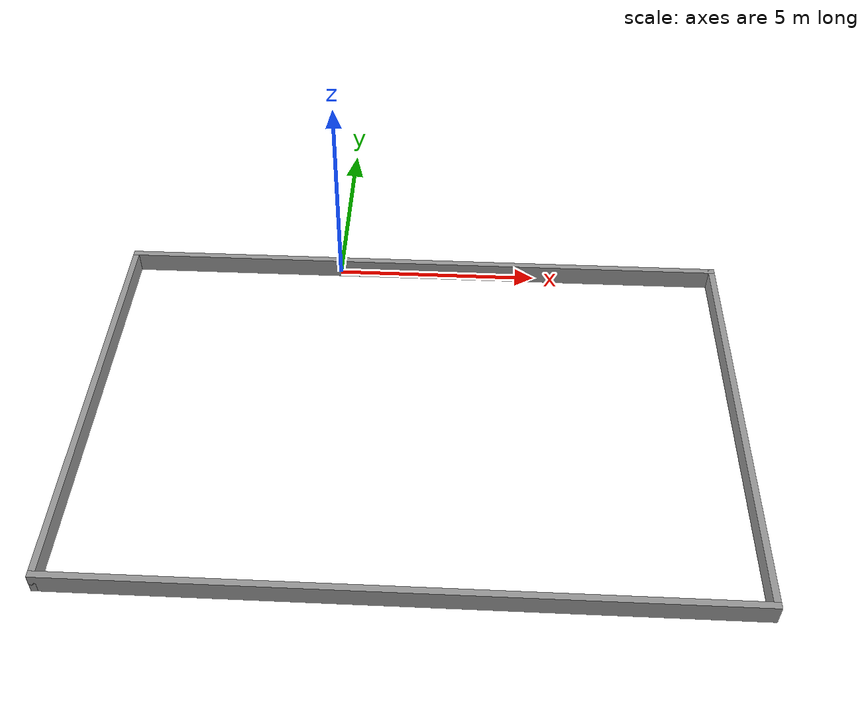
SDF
<?xml version='1.0'?>
<sdf version='1.6'>
  <model name='Boundary'>
    <pose frame=''>2.094 -4.998 0 0 -0 0</pose>
    <link name='Wall_0'>
      <collision name='Wall_0_Collision'>
        <geometry>
          <box>
            <size>10 0.15 0.5</size>
          </box>
        </geometry>
        <pose frame=''>0 0 0.25 0 -0 0</pose>
      </collision>
      <visual name='Wall_0_Visual'>
        <pose frame=''>0 0 0.25 0 -0 0</pose>
        <geometry>
          <box>
            <size>10 0.15 0.5</size>
          </box>
        </geometry>
        <material>
          <script>
            <uri>file://media/materials/scripts/gazebo.material</uri>
            <name>Gazebo/Grey</name>
          </script>
          <ambient>1 1 1 1</ambient>
        </material>
      </visual>
      <pose frame=''>-7.425 0 0 0 0 -1.5708</pose>
    </link>
    <link name='Wall_1'>
      <collision name='Wall_1_Collision'>
        <geometry>
          <box>
            <size>15 0.15 0.5</size>
          </box>
        </geometry>
        <pose frame=''>0 0 0.25 0 -0 0</pose>
      </collision>
      <visual name='Wall_1_Visual'>
        <pose frame=''>0 0 0.25 0 -0 0</pose>
        <geometry>
          <box>
            <size>15 0.15 0.5</size>
          </box>
        </geometry>
        <material>
          <script>
            <uri>file://media/materials/scripts/gazebo.material</uri>
            <name>Gazebo/Grey</name>
          </script>
          <ambient>1 1 1 1</ambient>
        </material>
      </visual>
      <pose frame=''>0 -4.925 0 0 -0 0</pose>
    </link>
    <link name='Wall_2'>
      <collision name='Wall_2_Collision'>
        <geometry>
          <box>
            <size>10 0.15 0.5</size>
          </box>
        </geometry>
        <pose frame=''>0 0 0.25 0 -0 0</pose>
      </collision>
      <visual name='Wall_2_Visual'>
        <pose frame=''>0 0 0.25 0 -0 0</pose>
        <geometry>
          <box>
            <size>10 0.15 0.5</size>
          </box>
        </geometry>
        <material>
          <script>
            <uri>file://media/materials/scripts/gazebo.material</uri>
            <name>Gazebo/Grey</name>
          </script>
          <ambient>1 1 1 1</ambient>
        </material>
      </visual>
      <pose frame=''>7.425 0 0 0 -0 1.5708</pose>
    </link>
    <link name='Wall_3'>
      <collision name='Wall_3_Collision'>
        <geometry>
          <box>
            <size>15 0.15 0.5</size>
          </box>
        </geometry>
        <pose frame=''>0 0 0.25 0 -0 0</pose>
      </collision>
      <visual name='Wall_3_Visual'>
        <pose frame=''>0 0 0.25 0 -0 0</pose>
        <geometry>
          <box>
            <size>15 0.15 0.5</size>
          </box>
        </geometry>
        <material>
          <script>
            <uri>file://media/materials/scripts/gazebo.material</uri>
            <name>Gazebo/Grey</name>
          </script>
          <ambient>1 1 1 1</ambient>
        </material>
      </visual>
      <pose frame=''>0 4.925 0 0 -0 3.14159</pose>
    </link>
    <static>1</static>
  </model>
</sdf>
